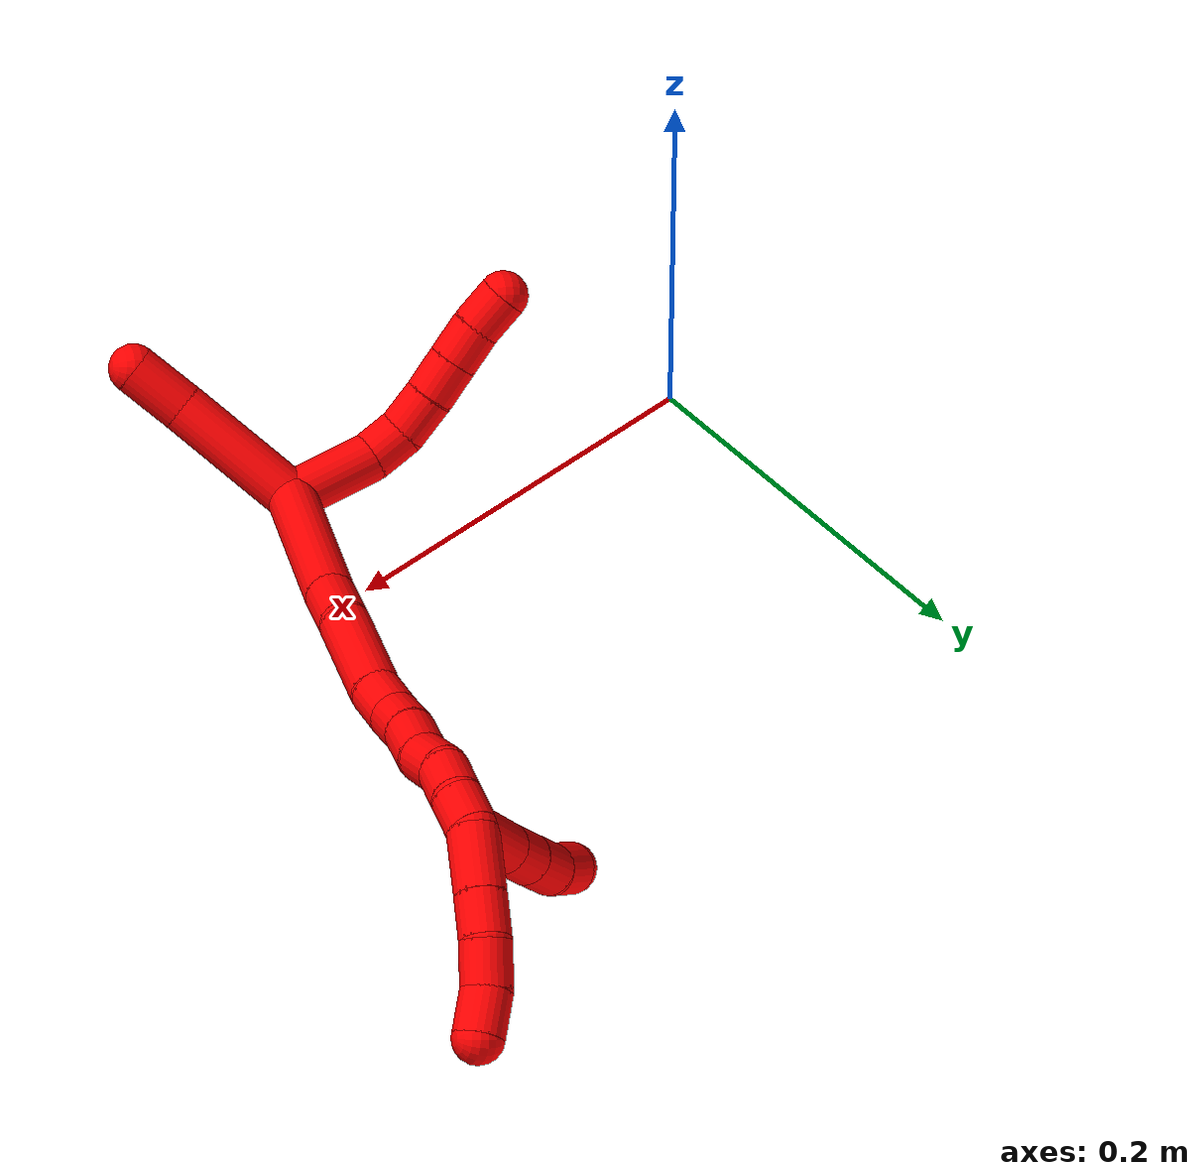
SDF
<sdf version="1.7">
 <world name="default">
  <model name="2">
   <static>0</static>
   <link name="2">
    <collision name="collision-cylinder-e_1_2_8">
     <pose>-0.010132 -0.002188 -0.020363 3.03453 -0.459435 -2.6911</pose>
     <geometry><cylinder><radius>0.0125</radius><length>0.045699</length></cylinder></geometry>
     <surface>
      <friction><ode><mu>1.16</mu><mu2>1.16</mu2><slip1>0</slip1><slip2>0</slip2></ode></friction>
      <contact><ode><kp>1e+06</kp><kd>1</kd><max_vel>0</max_vel><min_depth>0.001</min_depth></ode></contact>
     </surface>
    </collision>
    <visual name="visual-cylinder-e_1_2_8">
     <pose>-0.010132 -0.002188 -0.020363 3.03453 -0.459435 -2.6911</pose>
     <geometry><cylinder><radius>0.0125</radius><length>0.045699</length></cylinder></geometry>
     <material><ambient>1 0 0 1</ambient></material>
    </visual>
    <collision name="collision-cylinder-e_2_8_9">
     <pose>-0.027218 -0.003943 -0.047922 -3.08143 -0.767298 2.99277</pose>
     <geometry><cylinder><radius>0.0125</radius><length>0.020031</length></cylinder></geometry>
     <surface>
      <friction><ode><mu>1.16</mu><mu2>1.16</mu2><slip1>0</slip1><slip2>0</slip2></ode></friction>
      <contact><ode><kp>1e+06</kp><kd>1</kd><max_vel>0</max_vel><min_depth>0.001</min_depth></ode></contact>
     </surface>
    </collision>
    <visual name="visual-cylinder-e_2_8_9">
     <pose>-0.027218 -0.003943 -0.047922 -3.08143 -0.767298 2.99277</pose>
     <geometry><cylinder><radius>0.0125</radius><length>0.020031</length></cylinder></geometry>
     <material><ambient>1 0 0 1</ambient></material>
    </visual>
    <collision name="collision-cylinder-e_3_9_10">
     <pose>-0.043865 -0.002454 -0.060499 -2.94777 -1.05602 2.81127</pose>
     <geometry><cylinder><radius>0.0125</radius><length>0.022277</length></cylinder></geometry>
     <surface>
      <friction><ode><mu>1.16</mu><mu2>1.16</mu2><slip1>0</slip1><slip2>0</slip2></ode></friction>
      <contact><ode><kp>1e+06</kp><kd>1</kd><max_vel>0</max_vel><min_depth>0.001</min_depth></ode></contact>
     </surface>
    </collision>
    <visual name="visual-cylinder-e_3_9_10">
     <pose>-0.043865 -0.002454 -0.060499 -2.94777 -1.05602 2.81127</pose>
     <geometry><cylinder><radius>0.0125</radius><length>0.022277</length></cylinder></geometry>
     <material><ambient>1 0 0 1</ambient></material>
    </visual>
    <collision name="collision-cylinder-e_4_10_11">
     <pose>-0.062771 -0.001071 -0.070595 -3.07244 -1.09676 3.02847</pose>
     <geometry><cylinder><radius>0.0125</radius><length>0.020705</length></cylinder></geometry>
     <surface>
      <friction><ode><mu>1.16</mu><mu2>1.16</mu2><slip1>0</slip1><slip2>0</slip2></ode></friction>
      <contact><ode><kp>1e+06</kp><kd>1</kd><max_vel>0</max_vel><min_depth>0.001</min_depth></ode></contact>
     </surface>
    </collision>
    <visual name="visual-cylinder-e_4_10_11">
     <pose>-0.062771 -0.001071 -0.070595 -3.07244 -1.09676 3.02847</pose>
     <geometry><cylinder><radius>0.0125</radius><length>0.020705</length></cylinder></geometry>
     <material><ambient>1 0 0 1</ambient></material>
    </visual>
    <collision name="collision-cylinder-e_5_11_12">
     <pose>-0.080966 -0.000467 -0.079945 -3.08184 -1.0937 3.04349</pose>
     <geometry><cylinder><radius>0.0125</radius><length>0.020226</length></cylinder></geometry>
     <surface>
      <friction><ode><mu>1.16</mu><mu2>1.16</mu2><slip1>0</slip1><slip2>0</slip2></ode></friction>
      <contact><ode><kp>1e+06</kp><kd>1</kd><max_vel>0</max_vel><min_depth>0.001</min_depth></ode></contact>
     </surface>
    </collision>
    <visual name="visual-cylinder-e_5_11_12">
     <pose>-0.080966 -0.000467 -0.079945 -3.08184 -1.0937 3.04349</pose>
     <geometry><cylinder><radius>0.0125</radius><length>0.020226</length></cylinder></geometry>
     <material><ambient>1 0 0 1</ambient></material>
    </visual>
    <collision name="collision-cylinder-e_6_12_6">
     <pose>-0.098881 0.001242 -0.089973 -2.88215 -1.01242 2.67938</pose>
     <geometry><cylinder><radius>0.0125</radius><length>0.021061</length></cylinder></geometry>
     <surface>
      <friction><ode><mu>1.16</mu><mu2>1.16</mu2><slip1>0</slip1><slip2>0</slip2></ode></friction>
      <contact><ode><kp>1e+06</kp><kd>1</kd><max_vel>0</max_vel><min_depth>0.001</min_depth></ode></contact>
     </surface>
    </collision>
    <visual name="visual-cylinder-e_6_12_6">
     <pose>-0.098881 0.001242 -0.089973 -2.88215 -1.01242 2.67938</pose>
     <geometry><cylinder><radius>0.0125</radius><length>0.021061</length></cylinder></geometry>
     <material><ambient>1 0 0 1</ambient></material>
    </visual>
    <collision name="collision-cylinder-e_1_2_13">
     <pose>-0.016683 -0.017538 0.024818 0.61519 -0.502042 -0.162565</pose>
     <geometry><cylinder><radius>0.0125</radius><length>0.069336</length></cylinder></geometry>
     <surface>
      <friction><ode><mu>1.16</mu><mu2>1.16</mu2><slip1>0</slip1><slip2>0</slip2></ode></friction>
      <contact><ode><kp>1e+06</kp><kd>1</kd><max_vel>0</max_vel><min_depth>0.001</min_depth></ode></contact>
     </surface>
    </collision>
    <visual name="visual-cylinder-e_1_2_13">
     <pose>-0.016683 -0.017538 0.024818 0.61519 -0.502042 -0.162565</pose>
     <geometry><cylinder><radius>0.0125</radius><length>0.069336</length></cylinder></geometry>
     <material><ambient>1 0 0 1</ambient></material>
    </visual>
    <collision name="collision-cylinder-e_2_13_5">
     <pose>-0.041058 -0.040925 0.061541 0.456599 -0.525573 -0.124846</pose>
     <geometry><cylinder><radius>0.0125</radius><length>0.030664</length></cylinder></geometry>
     <surface>
      <friction><ode><mu>1.16</mu><mu2>1.16</mu2><slip1>0</slip1><slip2>0</slip2></ode></friction>
      <contact><ode><kp>1e+06</kp><kd>1</kd><max_vel>0</max_vel><min_depth>0.001</min_depth></ode></contact>
     </surface>
    </collision>
    <visual name="visual-cylinder-e_2_13_5">
     <pose>-0.041058 -0.040925 0.061541 0.456599 -0.525573 -0.124846</pose>
     <geometry><cylinder><radius>0.0125</radius><length>0.030664</length></cylinder></geometry>
     <material><ambient>1 0 0 1</ambient></material>
    </visual>
    <collision name="collision-cylinder-e_1_2_14">
     <pose>0.010517 0.045372 0.005583 -1.44837 0.226137 -0.200203</pose>
     <geometry><cylinder><radius>0.0125</radius><length>0.093816</length></cylinder></geometry>
     <surface>
      <friction><ode><mu>1.16</mu><mu2>1.16</mu2><slip1>0</slip1><slip2>0</slip2></ode></friction>
      <contact><ode><kp>1e+06</kp><kd>1</kd><max_vel>0</max_vel><min_depth>0.001</min_depth></ode></contact>
     </surface>
    </collision>
    <visual name="visual-cylinder-e_1_2_14">
     <pose>0.010517 0.045372 0.005583 -1.44837 0.226137 -0.200203</pose>
     <geometry><cylinder><radius>0.0125</radius><length>0.093816</length></cylinder></geometry>
     <material><ambient>1 0 0 1</ambient></material>
    </visual>
    <collision name="collision-cylinder-e_2_14_15">
     <pose>0.02319 0.104672 0.01267 -1.46319 0.15265 -0.1371</pose>
     <geometry><cylinder><radius>0.0125</radius><length>0.028348</length></cylinder></geometry>
     <surface>
      <friction><ode><mu>1.16</mu><mu2>1.16</mu2><slip1>0</slip1><slip2>0</slip2></ode></friction>
      <contact><ode><kp>1e+06</kp><kd>1</kd><max_vel>0</max_vel><min_depth>0.001</min_depth></ode></contact>
     </surface>
    </collision>
    <visual name="visual-cylinder-e_2_14_15">
     <pose>0.02319 0.104672 0.01267 -1.46319 0.15265 -0.1371</pose>
     <geometry><cylinder><radius>0.0125</radius><length>0.028348</length></cylinder></geometry>
     <material><ambient>1 0 0 1</ambient></material>
    </visual>
    <collision name="collision-cylinder-e_3_15_16">
     <pose>0.034116 0.142098 0.013993 -1.57852 0.357232 -0.359944</pose>
     <geometry><cylinder><radius>0.0125</radius><length>0.050165</length></cylinder></geometry>
     <surface>
      <friction><ode><mu>1.16</mu><mu2>1.16</mu2><slip1>0</slip1><slip2>0</slip2></ode></friction>
      <contact><ode><kp>1e+06</kp><kd>1</kd><max_vel>0</max_vel><min_depth>0.001</min_depth></ode></contact>
     </surface>
    </collision>
    <visual name="visual-cylinder-e_3_15_16">
     <pose>0.034116 0.142098 0.013993 -1.57852 0.357232 -0.359944</pose>
     <geometry><cylinder><radius>0.0125</radius><length>0.050165</length></cylinder></geometry>
     <material><ambient>1 0 0 1</ambient></material>
    </visual>
    <collision name="collision-cylinder-e_4_16_17">
     <pose>0.045479 0.175275 0.012419 -1.71368 0.259049 -0.298431</pose>
     <geometry><cylinder><radius>0.0125</radius><length>0.020231</length></cylinder></geometry>
     <surface>
      <friction><ode><mu>1.16</mu><mu2>1.16</mu2><slip1>0</slip1><slip2>0</slip2></ode></friction>
      <contact><ode><kp>1e+06</kp><kd>1</kd><max_vel>0</max_vel><min_depth>0.001</min_depth></ode></contact>
     </surface>
    </collision>
    <visual name="visual-cylinder-e_4_16_17">
     <pose>0.045479 0.175275 0.012419 -1.71368 0.259049 -0.298431</pose>
     <geometry><cylinder><radius>0.0125</radius><length>0.020231</length></cylinder></geometry>
     <material><ambient>1 0 0 1</ambient></material>
    </visual>
    <collision name="collision-cylinder-e_5_17_18">
     <pose>0.048526 0.195151 0.011108 -1.56281 0.044747 -0.044391</pose>
     <geometry><cylinder><radius>0.0125</radius><length>0.020416</length></cylinder></geometry>
     <surface>
      <friction><ode><mu>1.16</mu><mu2>1.16</mu2><slip1>0</slip1><slip2>0</slip2></ode></friction>
      <contact><ode><kp>1e+06</kp><kd>1</kd><max_vel>0</max_vel><min_depth>0.001</min_depth></ode></contact>
     </surface>
    </collision>
    <visual name="visual-cylinder-e_5_17_18">
     <pose>0.048526 0.195151 0.011108 -1.56281 0.044747 -0.044391</pose>
     <geometry><cylinder><radius>0.0125</radius><length>0.020416</length></cylinder></geometry>
     <material><ambient>1 0 0 1</ambient></material>
    </visual>
    <collision name="collision-cylinder-e_6_18_19">
     <pose>0.050994 0.217063 0.012233 -1.48199 0.169367 -0.155017</pose>
     <geometry><cylinder><radius>0.0125</radius><length>0.023864</length></cylinder></geometry>
     <surface>
      <friction><ode><mu>1.16</mu><mu2>1.16</mu2><slip1>0</slip1><slip2>0</slip2></ode></friction>
      <contact><ode><kp>1e+06</kp><kd>1</kd><max_vel>0</max_vel><min_depth>0.001</min_depth></ode></contact>
     </surface>
    </collision>
    <visual name="visual-cylinder-e_6_18_19">
     <pose>0.050994 0.217063 0.012233 -1.48199 0.169367 -0.155017</pose>
     <geometry><cylinder><radius>0.0125</radius><length>0.023864</length></cylinder></geometry>
     <material><ambient>1 0 0 1</ambient></material>
    </visual>
    <collision name="collision-cylinder-e_7_19_20">
     <pose>0.052482 0.239283 0.01249 -1.64548 -0.049618 0.053467</pose>
     <geometry><cylinder><radius>0.0125</radius><length>0.021094</length></cylinder></geometry>
     <surface>
      <friction><ode><mu>1.16</mu><mu2>1.16</mu2><slip1>0</slip1><slip2>0</slip2></ode></friction>
      <contact><ode><kp>1e+06</kp><kd>1</kd><max_vel>0</max_vel><min_depth>0.001</min_depth></ode></contact>
     </surface>
    </collision>
    <visual name="visual-cylinder-e_7_19_20">
     <pose>0.052482 0.239283 0.01249 -1.64548 -0.049618 0.053467</pose>
     <geometry><cylinder><radius>0.0125</radius><length>0.021094</length></cylinder></geometry>
     <material><ambient>1 0 0 1</ambient></material>
    </visual>
    <collision name="collision-cylinder-e_8_20_21">
     <pose>0.054852 0.260244 0.012202 -1.52315 0.269574 -0.257168</pose>
     <geometry><cylinder><radius>0.0125</radius><length>0.021721</length></cylinder></geometry>
     <surface>
      <friction><ode><mu>1.16</mu><mu2>1.16</mu2><slip1>0</slip1><slip2>0</slip2></ode></friction>
      <contact><ode><kp>1e+06</kp><kd>1</kd><max_vel>0</max_vel><min_depth>0.001</min_depth></ode></contact>
     </surface>
    </collision>
    <visual name="visual-cylinder-e_8_20_21">
     <pose>0.054852 0.260244 0.012202 -1.52315 0.269574 -0.257168</pose>
     <geometry><cylinder><radius>0.0125</radius><length>0.021721</length></cylinder></geometry>
     <material><ambient>1 0 0 1</ambient></material>
    </visual>
    <collision name="collision-cylinder-e_9_21_1">
     <pose>0.062146 0.279822 0.011759 -1.67371 0.447505 -0.494241</pose>
     <geometry><cylinder><radius>0.0125</radius><length>0.020344</length></cylinder></geometry>
     <surface>
      <friction><ode><mu>1.16</mu><mu2>1.16</mu2><slip1>0</slip1><slip2>0</slip2></ode></friction>
      <contact><ode><kp>1e+06</kp><kd>1</kd><max_vel>0</max_vel><min_depth>0.001</min_depth></ode></contact>
     </surface>
    </collision>
    <visual name="visual-cylinder-e_9_21_1">
     <pose>0.062146 0.279822 0.011759 -1.67371 0.447505 -0.494241</pose>
     <geometry><cylinder><radius>0.0125</radius><length>0.020344</length></cylinder></geometry>
     <material><ambient>1 0 0 1</ambient></material>
    </visual>
    <collision name="collision-cylinder-e_1_1_22">
     <pose>0.073995 0.280803 -0.001905 2.57234 0.458099 1.34567</pose>
     <geometry><cylinder><radius>0.0125</radius><length>0.03368</length></cylinder></geometry>
     <surface>
      <friction><ode><mu>1.16</mu><mu2>1.16</mu2><slip1>0</slip1><slip2>0</slip2></ode></friction>
      <contact><ode><kp>1e+06</kp><kd>1</kd><max_vel>0</max_vel><min_depth>0.001</min_depth></ode></contact>
     </surface>
    </collision>
    <visual name="visual-cylinder-e_1_1_22">
     <pose>0.073995 0.280803 -0.001905 2.57234 0.458099 1.34567</pose>
     <geometry><cylinder><radius>0.0125</radius><length>0.03368</length></cylinder></geometry>
     <material><ambient>1 0 0 1</ambient></material>
    </visual>
    <collision name="collision-cylinder-e_2_22_23">
     <pose>0.085962 0.267608 -0.023112 2.6043 0.429208 1.33934</pose>
     <geometry><cylinder><radius>0.0125</radius><length>0.021723</length></cylinder></geometry>
     <surface>
      <friction><ode><mu>1.16</mu><mu2>1.16</mu2><slip1>0</slip1><slip2>0</slip2></ode></friction>
      <contact><ode><kp>1e+06</kp><kd>1</kd><max_vel>0</max_vel><min_depth>0.001</min_depth></ode></contact>
     </surface>
    </collision>
    <visual name="visual-cylinder-e_2_22_23">
     <pose>0.085962 0.267608 -0.023112 2.6043 0.429208 1.33934</pose>
     <geometry><cylinder><radius>0.0125</radius><length>0.021723</length></cylinder></geometry>
     <material><ambient>1 0 0 1</ambient></material>
    </visual>
    <collision name="collision-cylinder-e_3_23_24">
     <pose>0.095315 0.256767 -0.040887 2.58459 0.415794 1.27122</pose>
     <geometry><cylinder><radius>0.0125</radius><length>0.023929</length></cylinder></geometry>
     <surface>
      <friction><ode><mu>1.16</mu><mu2>1.16</mu2><slip1>0</slip1><slip2>0</slip2></ode></friction>
      <contact><ode><kp>1e+06</kp><kd>1</kd><max_vel>0</max_vel><min_depth>0.001</min_depth></ode></contact>
     </surface>
    </collision>
    <visual name="visual-cylinder-e_3_23_24">
     <pose>0.095315 0.256767 -0.040887 2.58459 0.415794 1.27122</pose>
     <geometry><cylinder><radius>0.0125</radius><length>0.023929</length></cylinder></geometry>
     <material><ambient>1 0 0 1</ambient></material>
    </visual>
    <collision name="collision-cylinder-e_4_24_4">
     <pose>0.102037 0.244854 -0.058283 2.4943 0.183929 0.536615</pose>
     <geometry><cylinder><radius>0.0125</radius><length>0.020668</length></cylinder></geometry>
     <surface>
      <friction><ode><mu>1.16</mu><mu2>1.16</mu2><slip1>0</slip1><slip2>0</slip2></ode></friction>
      <contact><ode><kp>1e+06</kp><kd>1</kd><max_vel>0</max_vel><min_depth>0.001</min_depth></ode></contact>
     </surface>
    </collision>
    <visual name="visual-cylinder-e_4_24_4">
     <pose>0.102037 0.244854 -0.058283 2.4943 0.183929 0.536615</pose>
     <geometry><cylinder><radius>0.0125</radius><length>0.020668</length></cylinder></geometry>
     <material><ambient>1 0 0 1</ambient></material>
    </visual>
    <collision name="collision-cylinder-e_1_1_25">
     <pose>0.07829 0.300005 0.011497 -1.50932 0.814344 -0.770549</pose>
     <geometry><cylinder><radius>0.0125</radius><length>0.032292</length></cylinder></geometry>
     <surface>
      <friction><ode><mu>1.16</mu><mu2>1.16</mu2><slip1>0</slip1><slip2>0</slip2></ode></friction>
      <contact><ode><kp>1e+06</kp><kd>1</kd><max_vel>0</max_vel><min_depth>0.001</min_depth></ode></contact>
     </surface>
    </collision>
    <visual name="visual-cylinder-e_1_1_25">
     <pose>0.07829 0.300005 0.011497 -1.50932 0.814344 -0.770549</pose>
     <geometry><cylinder><radius>0.0125</radius><length>0.032292</length></cylinder></geometry>
     <material><ambient>1 0 0 1</ambient></material>
    </visual>
    <collision name="collision-cylinder-e_2_25_26">
     <pose>0.098263 0.318451 0.012648 -1.5072 0.838483 -0.792171</pose>
     <geometry><cylinder><radius>0.0125</radius><length>0.022137</length></cylinder></geometry>
     <surface>
      <friction><ode><mu>1.16</mu><mu2>1.16</mu2><slip1>0</slip1><slip2>0</slip2></ode></friction>
      <contact><ode><kp>1e+06</kp><kd>1</kd><max_vel>0</max_vel><min_depth>0.001</min_depth></ode></contact>
     </surface>
    </collision>
    <visual name="visual-cylinder-e_2_25_26">
     <pose>0.098263 0.318451 0.012648 -1.5072 0.838483 -0.792171</pose>
     <geometry><cylinder><radius>0.0125</radius><length>0.022137</length></cylinder></geometry>
     <material><ambient>1 0 0 1</ambient></material>
    </visual>
    <collision name="collision-cylinder-e_3_26_27">
     <pose>0.116337 0.331564 0.013582 -1.49013 1.04233 -0.974051</pose>
     <geometry><cylinder><radius>0.0125</radius><length>0.022796</length></cylinder></geometry>
     <surface>
      <friction><ode><mu>1.16</mu><mu2>1.16</mu2><slip1>0</slip1><slip2>0</slip2></ode></friction>
      <contact><ode><kp>1e+06</kp><kd>1</kd><max_vel>0</max_vel><min_depth>0.001</min_depth></ode></contact>
     </surface>
    </collision>
    <visual name="visual-cylinder-e_3_26_27">
     <pose>0.116337 0.331564 0.013582 -1.49013 1.04233 -0.974051</pose>
     <geometry><cylinder><radius>0.0125</radius><length>0.022796</length></cylinder></geometry>
     <material><ambient>1 0 0 1</ambient></material>
    </visual>
    <collision name="collision-cylinder-e_4_27_3">
     <pose>0.135489 0.343121 0.017052 -1.09443 0.957055 -0.612244</pose>
     <geometry><cylinder><radius>0.0125</radius><length>0.022776</length></cylinder></geometry>
     <surface>
      <friction><ode><mu>1.16</mu><mu2>1.16</mu2><slip1>0</slip1><slip2>0</slip2></ode></friction>
      <contact><ode><kp>1e+06</kp><kd>1</kd><max_vel>0</max_vel><min_depth>0.001</min_depth></ode></contact>
     </surface>
    </collision>
    <visual name="visual-cylinder-e_4_27_3">
     <pose>0.135489 0.343121 0.017052 -1.09443 0.957055 -0.612244</pose>
     <geometry><cylinder><radius>0.0125</radius><length>0.022776</length></cylinder></geometry>
     <material><ambient>1 0 0 1</ambient></material>
    </visual>
    <collision name="collision-sphere-3">
     <pose>0.144799 0.348949 0.02006 0 -0 0</pose>
     <geometry><sphere><radius>0.0125</radius></sphere></geometry>
     <surface>
      <friction><ode><mu>1.16</mu><mu2>1.16</mu2><slip1>0</slip1><slip2>0</slip2></ode></friction>
      <contact><ode><kp>1e+06</kp><kd>1</kd><max_vel>0</max_vel><min_depth>0.001</min_depth></ode></contact>
     </surface>
    </collision>
    <visual name="visual-sphere-3">
     <pose>0.144799 0.348949 0.02006 0 -0 0</pose>
     <geometry><sphere><radius>0.0125</radius></sphere></geometry>
     <material><ambient>1 0 0 1</ambient></material>
    </visual>
    <collision name="collision-sphere-27">
     <pose>0.12618 0.337292 0.014045 0 -0 0</pose>
     <geometry><sphere><radius>0.0125</radius></sphere></geometry>
     <surface>
      <friction><ode><mu>1.16</mu><mu2>1.16</mu2><slip1>0</slip1><slip2>0</slip2></ode></friction>
      <contact><ode><kp>1e+06</kp><kd>1</kd><max_vel>0</max_vel><min_depth>0.001</min_depth></ode></contact>
     </surface>
    </collision>
    <visual name="visual-sphere-27">
     <pose>0.12618 0.337292 0.014045 0 -0 0</pose>
     <geometry><sphere><radius>0.0125</radius></sphere></geometry>
     <material><ambient>1 0 0 1</ambient></material>
    </visual>
    <collision name="collision-sphere-26">
     <pose>0.106494 0.325836 0.013119 0 -0 0</pose>
     <geometry><sphere><radius>0.0125</radius></sphere></geometry>
     <surface>
      <friction><ode><mu>1.16</mu><mu2>1.16</mu2><slip1>0</slip1><slip2>0</slip2></ode></friction>
      <contact><ode><kp>1e+06</kp><kd>1</kd><max_vel>0</max_vel><min_depth>0.001</min_depth></ode></contact>
     </surface>
    </collision>
    <visual name="visual-sphere-26">
     <pose>0.106494 0.325836 0.013119 0 -0 0</pose>
     <geometry><sphere><radius>0.0125</radius></sphere></geometry>
     <material><ambient>1 0 0 1</ambient></material>
    </visual>
    <collision name="collision-sphere-25">
     <pose>0.090032 0.311065 0.012178 0 -0 0</pose>
     <geometry><sphere><radius>0.0125</radius></sphere></geometry>
     <surface>
      <friction><ode><mu>1.16</mu><mu2>1.16</mu2><slip1>0</slip1><slip2>0</slip2></ode></friction>
      <contact><ode><kp>1e+06</kp><kd>1</kd><max_vel>0</max_vel><min_depth>0.001</min_depth></ode></contact>
     </surface>
    </collision>
    <visual name="visual-sphere-25">
     <pose>0.090032 0.311065 0.012178 0 -0 0</pose>
     <geometry><sphere><radius>0.0125</radius></sphere></geometry>
     <material><ambient>1 0 0 1</ambient></material>
    </visual>
    <collision name="collision-sphere-4">
     <pose>0.103927 0.238728 -0.066387 0 -0 0</pose>
     <geometry><sphere><radius>0.0125</radius></sphere></geometry>
     <surface>
      <friction><ode><mu>1.16</mu><mu2>1.16</mu2><slip1>0</slip1><slip2>0</slip2></ode></friction>
      <contact><ode><kp>1e+06</kp><kd>1</kd><max_vel>0</max_vel><min_depth>0.001</min_depth></ode></contact>
     </surface>
    </collision>
    <visual name="visual-sphere-4">
     <pose>0.103927 0.238728 -0.066387 0 -0 0</pose>
     <geometry><sphere><radius>0.0125</radius></sphere></geometry>
     <material><ambient>1 0 0 1</ambient></material>
    </visual>
    <collision name="collision-sphere-24">
     <pose>0.100147 0.250981 -0.050178 0 -0 0</pose>
     <geometry><sphere><radius>0.0125</radius></sphere></geometry>
     <surface>
      <friction><ode><mu>1.16</mu><mu2>1.16</mu2><slip1>0</slip1><slip2>0</slip2></ode></friction>
      <contact><ode><kp>1e+06</kp><kd>1</kd><max_vel>0</max_vel><min_depth>0.001</min_depth></ode></contact>
     </surface>
    </collision>
    <visual name="visual-sphere-24">
     <pose>0.100147 0.250981 -0.050178 0 -0 0</pose>
     <geometry><sphere><radius>0.0125</radius></sphere></geometry>
     <material><ambient>1 0 0 1</ambient></material>
    </visual>
    <collision name="collision-sphere-23">
     <pose>0.090482 0.262553 -0.031596 0 -0 0</pose>
     <geometry><sphere><radius>0.0125</radius></sphere></geometry>
     <surface>
      <friction><ode><mu>1.16</mu><mu2>1.16</mu2><slip1>0</slip1><slip2>0</slip2></ode></friction>
      <contact><ode><kp>1e+06</kp><kd>1</kd><max_vel>0</max_vel><min_depth>0.001</min_depth></ode></contact>
     </surface>
    </collision>
    <visual name="visual-sphere-23">
     <pose>0.090482 0.262553 -0.031596 0 -0 0</pose>
     <geometry><sphere><radius>0.0125</radius></sphere></geometry>
     <material><ambient>1 0 0 1</ambient></material>
    </visual>
    <collision name="collision-sphere-22">
     <pose>0.081442 0.272663 -0.014627 0 -0 0</pose>
     <geometry><sphere><radius>0.0125</radius></sphere></geometry>
     <surface>
      <friction><ode><mu>1.16</mu><mu2>1.16</mu2><slip1>0</slip1><slip2>0</slip2></ode></friction>
      <contact><ode><kp>1e+06</kp><kd>1</kd><max_vel>0</max_vel><min_depth>0.001</min_depth></ode></contact>
     </surface>
    </collision>
    <visual name="visual-sphere-22">
     <pose>0.081442 0.272663 -0.014627 0 -0 0</pose>
     <geometry><sphere><radius>0.0125</radius></sphere></geometry>
     <material><ambient>1 0 0 1</ambient></material>
    </visual>
    <collision name="collision-sphere-1">
     <pose>0.066547 0.288944 0.010816 0 -0 0</pose>
     <geometry><sphere><radius>0.0125</radius></sphere></geometry>
     <surface>
      <friction><ode><mu>1.16</mu><mu2>1.16</mu2><slip1>0</slip1><slip2>0</slip2></ode></friction>
      <contact><ode><kp>1e+06</kp><kd>1</kd><max_vel>0</max_vel><min_depth>0.001</min_depth></ode></contact>
     </surface>
    </collision>
    <visual name="visual-sphere-1">
     <pose>0.066547 0.288944 0.010816 0 -0 0</pose>
     <geometry><sphere><radius>0.0125</radius></sphere></geometry>
     <material><ambient>1 0 0 1</ambient></material>
    </visual>
    <collision name="collision-sphere-21">
     <pose>0.057744 0.2707 0.012701 0 -0 0</pose>
     <geometry><sphere><radius>0.0125</radius></sphere></geometry>
     <surface>
      <friction><ode><mu>1.16</mu><mu2>1.16</mu2><slip1>0</slip1><slip2>0</slip2></ode></friction>
      <contact><ode><kp>1e+06</kp><kd>1</kd><max_vel>0</max_vel><min_depth>0.001</min_depth></ode></contact>
     </surface>
    </collision>
    <visual name="visual-sphere-21">
     <pose>0.057744 0.2707 0.012701 0 -0 0</pose>
     <geometry><sphere><radius>0.0125</radius></sphere></geometry>
     <material><ambient>1 0 0 1</ambient></material>
    </visual>
    <collision name="collision-sphere-12">
     <pose>-0.08995 -0.00019 -0.084581 0 -0 0</pose>
     <geometry><sphere><radius>0.0125</radius></sphere></geometry>
     <surface>
      <friction><ode><mu>1.16</mu><mu2>1.16</mu2><slip1>0</slip1><slip2>0</slip2></ode></friction>
      <contact><ode><kp>1e+06</kp><kd>1</kd><max_vel>0</max_vel><min_depth>0.001</min_depth></ode></contact>
     </surface>
    </collision>
    <visual name="visual-sphere-12">
     <pose>-0.08995 -0.00019 -0.084581 0 -0 0</pose>
     <geometry><sphere><radius>0.0125</radius></sphere></geometry>
     <material><ambient>1 0 0 1</ambient></material>
    </visual>
    <collision name="collision-sphere-11">
     <pose>-0.071982 -0.000744 -0.075309 0 -0 0</pose>
     <geometry><sphere><radius>0.0125</radius></sphere></geometry>
     <surface>
      <friction><ode><mu>1.16</mu><mu2>1.16</mu2><slip1>0</slip1><slip2>0</slip2></ode></friction>
      <contact><ode><kp>1e+06</kp><kd>1</kd><max_vel>0</max_vel><min_depth>0.001</min_depth></ode></contact>
     </surface>
    </collision>
    <visual name="visual-sphere-11">
     <pose>-0.071982 -0.000744 -0.075309 0 -0 0</pose>
     <geometry><sphere><radius>0.0125</radius></sphere></geometry>
     <material><ambient>1 0 0 1</ambient></material>
    </visual>
    <collision name="collision-sphere-10">
     <pose>-0.05356 -0.001397 -0.06588 0 -0 0</pose>
     <geometry><sphere><radius>0.0125</radius></sphere></geometry>
     <surface>
      <friction><ode><mu>1.16</mu><mu2>1.16</mu2><slip1>0</slip1><slip2>0</slip2></ode></friction>
      <contact><ode><kp>1e+06</kp><kd>1</kd><max_vel>0</max_vel><min_depth>0.001</min_depth></ode></contact>
     </surface>
    </collision>
    <visual name="visual-sphere-10">
     <pose>-0.05356 -0.001397 -0.06588 0 -0 0</pose>
     <geometry><sphere><radius>0.0125</radius></sphere></geometry>
     <material><ambient>1 0 0 1</ambient></material>
    </visual>
    <collision name="collision-sphere-9">
     <pose>-0.03417 -0.00351 -0.055118 0 -0 0</pose>
     <geometry><sphere><radius>0.0125</radius></sphere></geometry>
     <surface>
      <friction><ode><mu>1.16</mu><mu2>1.16</mu2><slip1>0</slip1><slip2>0</slip2></ode></friction>
      <contact><ode><kp>1e+06</kp><kd>1</kd><max_vel>0</max_vel><min_depth>0.001</min_depth></ode></contact>
     </surface>
    </collision>
    <visual name="visual-sphere-9">
     <pose>-0.03417 -0.00351 -0.055118 0 -0 0</pose>
     <geometry><sphere><radius>0.0125</radius></sphere></geometry>
     <material><ambient>1 0 0 1</ambient></material>
    </visual>
    <collision name="collision-sphere-2">
     <geometry><sphere><radius>0.0125</radius></sphere></geometry>
     <surface>
      <friction><ode><mu>1.16</mu><mu2>1.16</mu2><slip1>0</slip1><slip2>0</slip2></ode></friction>
      <contact><ode><kp>1e+06</kp><kd>1</kd><max_vel>0</max_vel><min_depth>0.001</min_depth></ode></contact>
     </surface>
    </collision>
    <visual name="visual-sphere-2">
     <geometry><sphere><radius>0.0125</radius></sphere></geometry>
     <material><ambient>1 0 0 1</ambient></material>
    </visual>
    <collision name="collision-sphere-19">
     <pose>0.053006 0.228778 0.013276 0 -0 0</pose>
     <geometry><sphere><radius>0.0125</radius></sphere></geometry>
     <surface>
      <friction><ode><mu>1.16</mu><mu2>1.16</mu2><slip1>0</slip1><slip2>0</slip2></ode></friction>
      <contact><ode><kp>1e+06</kp><kd>1</kd><max_vel>0</max_vel><min_depth>0.001</min_depth></ode></contact>
     </surface>
    </collision>
    <visual name="visual-sphere-19">
     <pose>0.053006 0.228778 0.013276 0 -0 0</pose>
     <geometry><sphere><radius>0.0125</radius></sphere></geometry>
     <material><ambient>1 0 0 1</ambient></material>
    </visual>
    <collision name="collision-sphere-8">
     <pose>-0.020265 -0.004377 -0.040726 0 -0 0</pose>
     <geometry><sphere><radius>0.0125</radius></sphere></geometry>
     <surface>
      <friction><ode><mu>1.16</mu><mu2>1.16</mu2><slip1>0</slip1><slip2>0</slip2></ode></friction>
      <contact><ode><kp>1e+06</kp><kd>1</kd><max_vel>0</max_vel><min_depth>0.001</min_depth></ode></contact>
     </surface>
    </collision>
    <visual name="visual-sphere-8">
     <pose>-0.020265 -0.004377 -0.040726 0 -0 0</pose>
     <geometry><sphere><radius>0.0125</radius></sphere></geometry>
     <material><ambient>1 0 0 1</ambient></material>
    </visual>
    <collision name="collision-sphere-6">
     <pose>-0.107812 0.002673 -0.095366 0 -0 0</pose>
     <geometry><sphere><radius>0.0125</radius></sphere></geometry>
     <surface>
      <friction><ode><mu>1.16</mu><mu2>1.16</mu2><slip1>0</slip1><slip2>0</slip2></ode></friction>
      <contact><ode><kp>1e+06</kp><kd>1</kd><max_vel>0</max_vel><min_depth>0.001</min_depth></ode></contact>
     </surface>
    </collision>
    <visual name="visual-sphere-6">
     <pose>-0.107812 0.002673 -0.095366 0 -0 0</pose>
     <geometry><sphere><radius>0.0125</radius></sphere></geometry>
     <material><ambient>1 0 0 1</ambient></material>
    </visual>
    <collision name="collision-sphere-13">
     <pose>-0.033366 -0.035077 0.049637 0 -0 0</pose>
     <geometry><sphere><radius>0.0125</radius></sphere></geometry>
     <surface>
      <friction><ode><mu>1.16</mu><mu2>1.16</mu2><slip1>0</slip1><slip2>0</slip2></ode></friction>
      <contact><ode><kp>1e+06</kp><kd>1</kd><max_vel>0</max_vel><min_depth>0.001</min_depth></ode></contact>
     </surface>
    </collision>
    <visual name="visual-sphere-13">
     <pose>-0.033366 -0.035077 0.049637 0 -0 0</pose>
     <geometry><sphere><radius>0.0125</radius></sphere></geometry>
     <material><ambient>1 0 0 1</ambient></material>
    </visual>
    <collision name="collision-sphere-5">
     <pose>-0.04875 -0.046772 0.073445 0 -0 0</pose>
     <geometry><sphere><radius>0.0125</radius></sphere></geometry>
     <surface>
      <friction><ode><mu>1.16</mu><mu2>1.16</mu2><slip1>0</slip1><slip2>0</slip2></ode></friction>
      <contact><ode><kp>1e+06</kp><kd>1</kd><max_vel>0</max_vel><min_depth>0.001</min_depth></ode></contact>
     </surface>
    </collision>
    <visual name="visual-sphere-5">
     <pose>-0.04875 -0.046772 0.073445 0 -0 0</pose>
     <geometry><sphere><radius>0.0125</radius></sphere></geometry>
     <material><ambient>1 0 0 1</ambient></material>
    </visual>
    <collision name="collision-sphere-14">
     <pose>0.021035 0.090743 0.011165 0 -0 0</pose>
     <geometry><sphere><radius>0.0125</radius></sphere></geometry>
     <surface>
      <friction><ode><mu>1.16</mu><mu2>1.16</mu2><slip1>0</slip1><slip2>0</slip2></ode></friction>
      <contact><ode><kp>1e+06</kp><kd>1</kd><max_vel>0</max_vel><min_depth>0.001</min_depth></ode></contact>
     </surface>
    </collision>
    <visual name="visual-sphere-14">
     <pose>0.021035 0.090743 0.011165 0 -0 0</pose>
     <geometry><sphere><radius>0.0125</radius></sphere></geometry>
     <material><ambient>1 0 0 1</ambient></material>
    </visual>
    <collision name="collision-sphere-15">
     <pose>0.025346 0.1186 0.014175 0 -0 0</pose>
     <geometry><sphere><radius>0.0125</radius></sphere></geometry>
     <surface>
      <friction><ode><mu>1.16</mu><mu2>1.16</mu2><slip1>0</slip1><slip2>0</slip2></ode></friction>
      <contact><ode><kp>1e+06</kp><kd>1</kd><max_vel>0</max_vel><min_depth>0.001</min_depth></ode></contact>
     </surface>
    </collision>
    <visual name="visual-sphere-15">
     <pose>0.025346 0.1186 0.014175 0 -0 0</pose>
     <geometry><sphere><radius>0.0125</radius></sphere></geometry>
     <material><ambient>1 0 0 1</ambient></material>
    </visual>
    <collision name="collision-sphere-16">
     <pose>0.042887 0.165596 0.013811 0 -0 0</pose>
     <geometry><sphere><radius>0.0125</radius></sphere></geometry>
     <surface>
      <friction><ode><mu>1.16</mu><mu2>1.16</mu2><slip1>0</slip1><slip2>0</slip2></ode></friction>
      <contact><ode><kp>1e+06</kp><kd>1</kd><max_vel>0</max_vel><min_depth>0.001</min_depth></ode></contact>
     </surface>
    </collision>
    <visual name="visual-sphere-16">
     <pose>0.042887 0.165596 0.013811 0 -0 0</pose>
     <geometry><sphere><radius>0.0125</radius></sphere></geometry>
     <material><ambient>1 0 0 1</ambient></material>
    </visual>
    <collision name="collision-sphere-17">
     <pose>0.04807 0.184953 0.011027 0 -0 0</pose>
     <geometry><sphere><radius>0.0125</radius></sphere></geometry>
     <surface>
      <friction><ode><mu>1.16</mu><mu2>1.16</mu2><slip1>0</slip1><slip2>0</slip2></ode></friction>
      <contact><ode><kp>1e+06</kp><kd>1</kd><max_vel>0</max_vel><min_depth>0.001</min_depth></ode></contact>
     </surface>
    </collision>
    <visual name="visual-sphere-17">
     <pose>0.04807 0.184953 0.011027 0 -0 0</pose>
     <geometry><sphere><radius>0.0125</radius></sphere></geometry>
     <material><ambient>1 0 0 1</ambient></material>
    </visual>
    <collision name="collision-sphere-18">
     <pose>0.048983 0.205348 0.011189 0 -0 0</pose>
     <geometry><sphere><radius>0.0125</radius></sphere></geometry>
     <surface>
      <friction><ode><mu>1.16</mu><mu2>1.16</mu2><slip1>0</slip1><slip2>0</slip2></ode></friction>
      <contact><ode><kp>1e+06</kp><kd>1</kd><max_vel>0</max_vel><min_depth>0.001</min_depth></ode></contact>
     </surface>
    </collision>
    <visual name="visual-sphere-18">
     <pose>0.048983 0.205348 0.011189 0 -0 0</pose>
     <geometry><sphere><radius>0.0125</radius></sphere></geometry>
     <material><ambient>1 0 0 1</ambient></material>
    </visual>
    <collision name="collision-sphere-20">
     <pose>0.051959 0.249788 0.011704 0 -0 0</pose>
     <geometry><sphere><radius>0.0125</radius></sphere></geometry>
     <surface>
      <friction><ode><mu>1.16</mu><mu2>1.16</mu2><slip1>0</slip1><slip2>0</slip2></ode></friction>
      <contact><ode><kp>1e+06</kp><kd>1</kd><max_vel>0</max_vel><min_depth>0.001</min_depth></ode></contact>
     </surface>
    </collision>
    <visual name="visual-sphere-20">
     <pose>0.051959 0.249788 0.011704 0 -0 0</pose>
     <geometry><sphere><radius>0.0125</radius></sphere></geometry>
     <material><ambient>1 0 0 1</ambient></material>
    </visual>
    <inertial>
     <pose>0.026421 0.132441 -0.003842 0 -0 0</pose>
     <mass>0.75</mass>
     <inertia><ixx>9.5e-05</ixx><ixy>0</ixy><ixz>0</ixz><iyy>6.1e-05</iyy><iyz>0</iyz><izz>-9.1e-05</izz></inertia>
    </inertial>
   </link>
   <pose>0.199091 -0.056888 0.021749 0.918299 1.01647 0.560896</pose>
  </model>
 </world>
</sdf>
